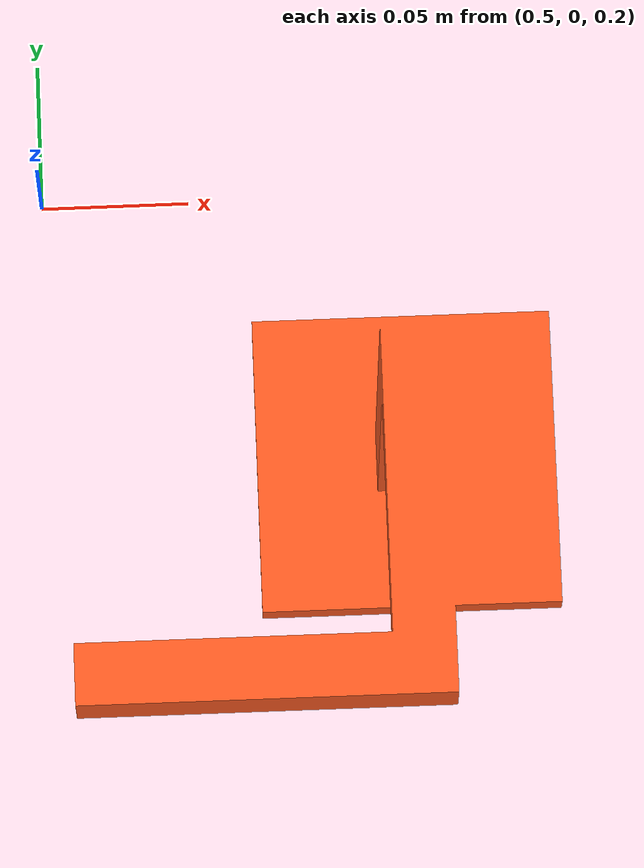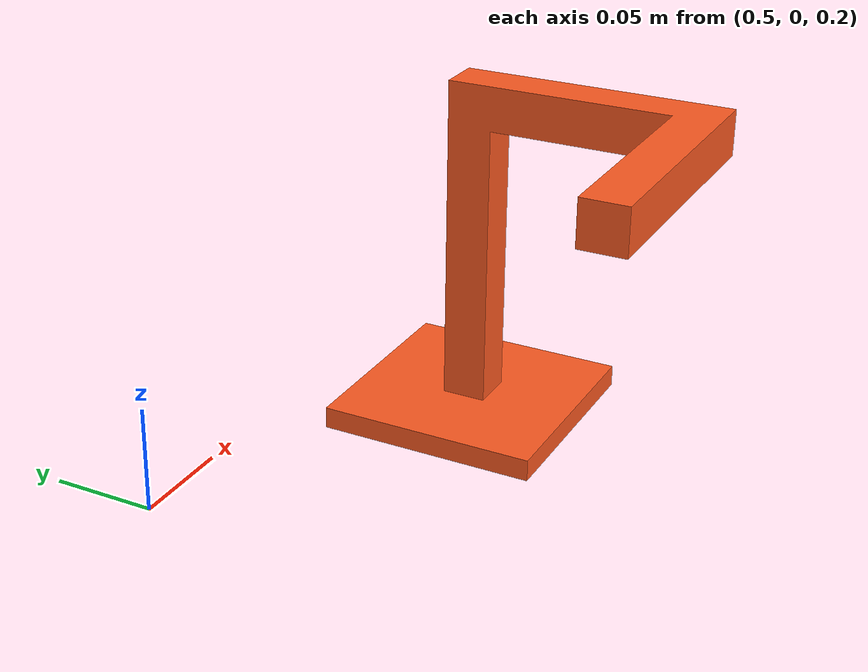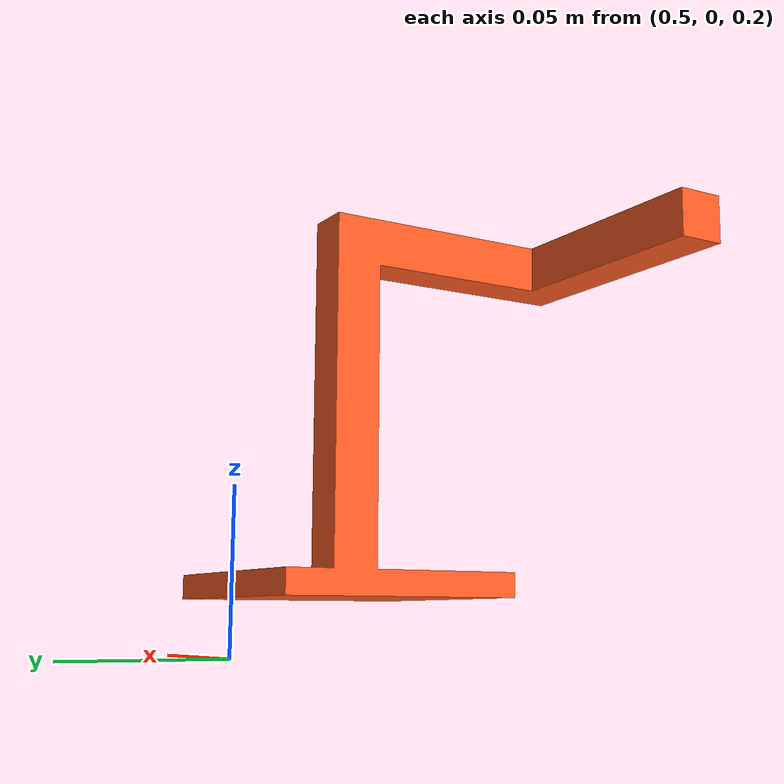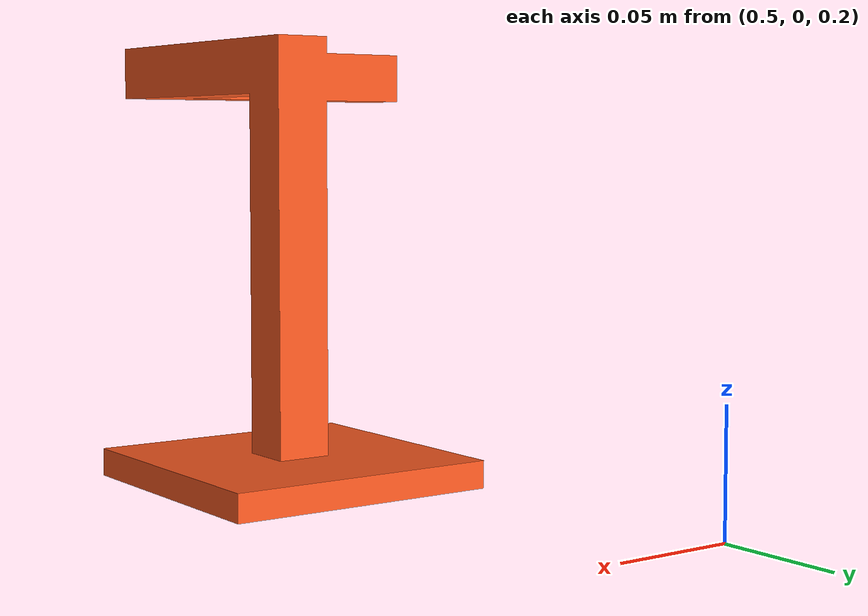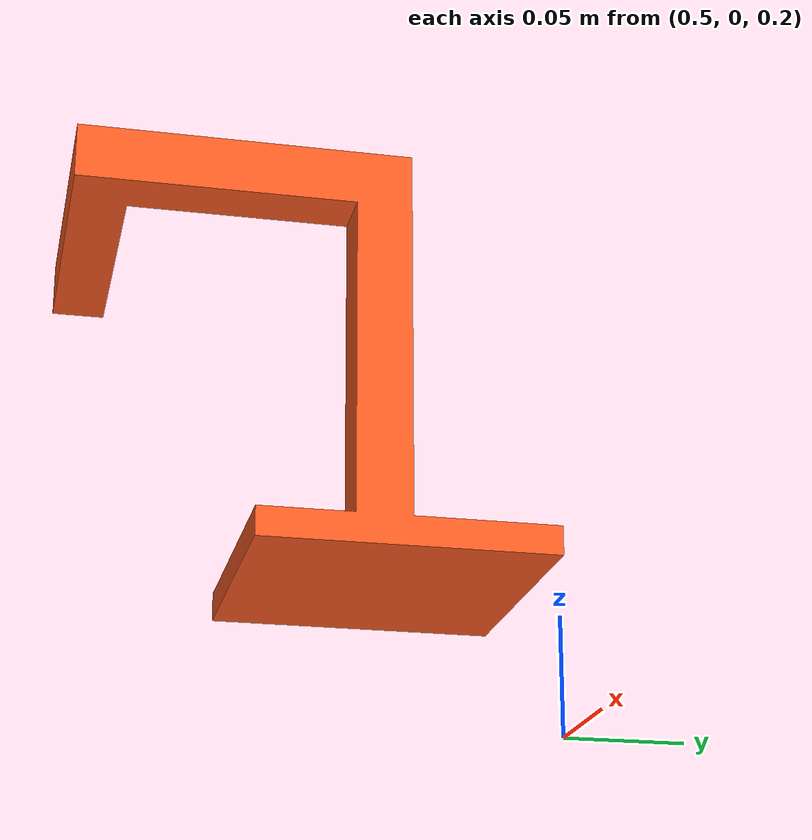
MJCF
<mujoco model="wire_base_via_stl">

  <default>

    <default class="visual_wire_base">
      <geom group="0" type="mesh" contype="0" conaffinity="0"/>
    </default>

    <default class="collision_wire_base">
      <geom group="3" type="mesh" rgba="0 0 0 0"
        contype="1"
        conaffinity="1"
        condim="1"
        friction="2.0 0.05 0.005"
        solimp="0.95 0.99 0.001 0.5 2"
        solref="0.01 1"/>
    </default>

  </default>

  <asset>
    <material name="wire_base_orange" rgba="1 0.356 0.133 1" specular="0.0" shininess="0.00" reflectance="0"/>
    <mesh name="wire_base_visual" file="/path/to/Intervention_IL_AR/intervene_base/mujoco_scenes/assets/wire_base/Basic_Model_Body.obj" scale="0.001 0.001 0.001"/>
    <mesh name="wire_base_col_0" file="/path/to/Intervention_IL_AR/intervene_base/mujoco_scenes/assets/wire_base/Basic_Model_Body_collision_0.obj" scale="0.001 0.001 0.001"/>
    <mesh name="wire_base_col_1" file="/path/to/Intervention_IL_AR/intervene_base/mujoco_scenes/assets/wire_base/Basic_Model_Body_collision_1.obj" scale="0.001 0.001 0.001"/>
    <mesh name="wire_base_col_2" file="/path/to/Intervention_IL_AR/intervene_base/mujoco_scenes/assets/wire_base/Basic_Model_Body_collision_2.obj" scale="0.001 0.001 0.001"/>
    <mesh name="wire_base_col_3" file="/path/to/Intervention_IL_AR/intervene_base/mujoco_scenes/assets/wire_base/Basic_Model_Body_collision_3.obj" scale="0.001 0.001 0.001"/>
  </asset>

  <worldbody>
    <body name="object" pos="0.62 -0.1 0.22" euler="0.0 0.0 0.0">
      <joint name="wire_base_free" type="free"/>
      <geom name="wire_base_visual" mesh="wire_base_visual" class="visual_wire_base" material="wire_base_orange"/>
      <geom name="wire_base_col_0" mesh="wire_base_col_0" class="collision_wire_base"/>
      <geom name="wire_base_col_1" mesh="wire_base_col_1" class="collision_wire_base"/>
      <geom name="wire_base_col_2" mesh="wire_base_col_2" class="collision_wire_base"/>
      <geom name="wire_base_col_3" mesh="wire_base_col_3" class="collision_wire_base"/>
    </body>
  </worldbody>
</mujoco>
